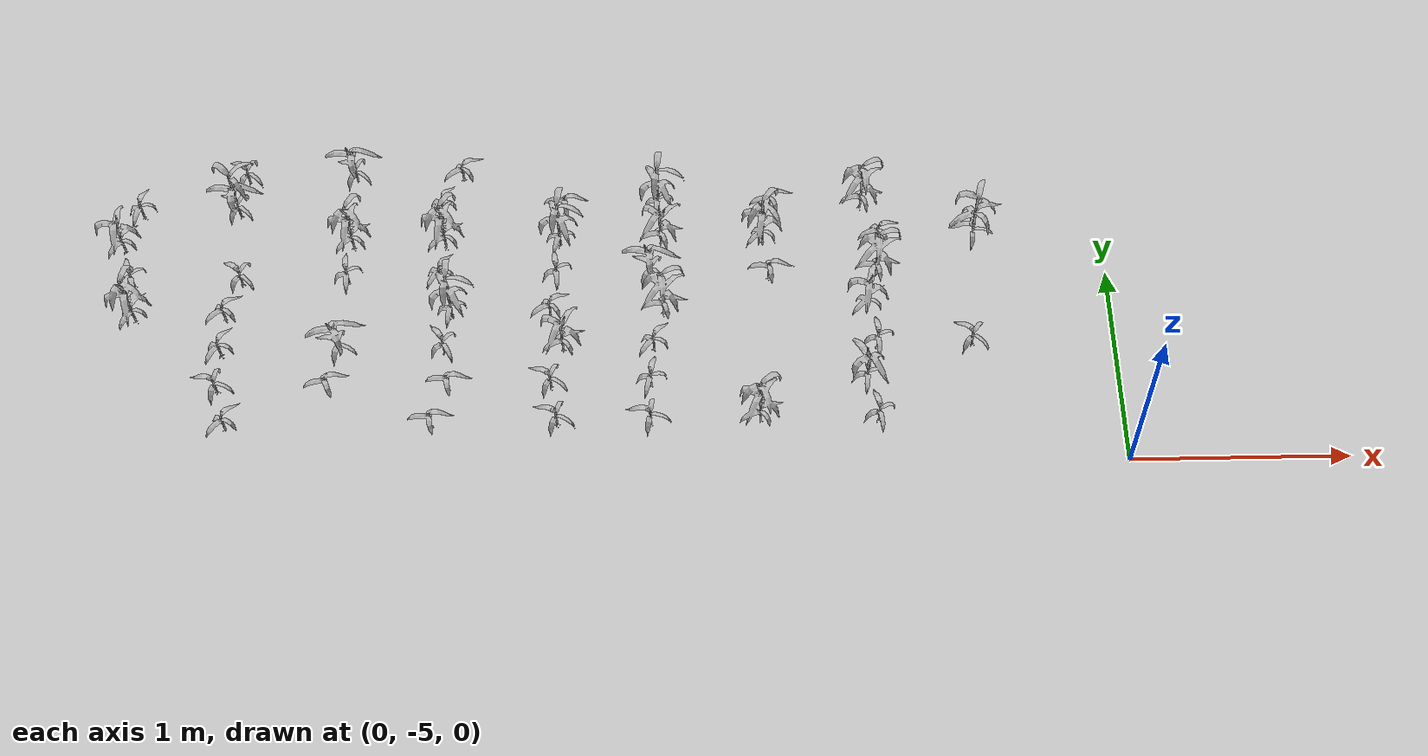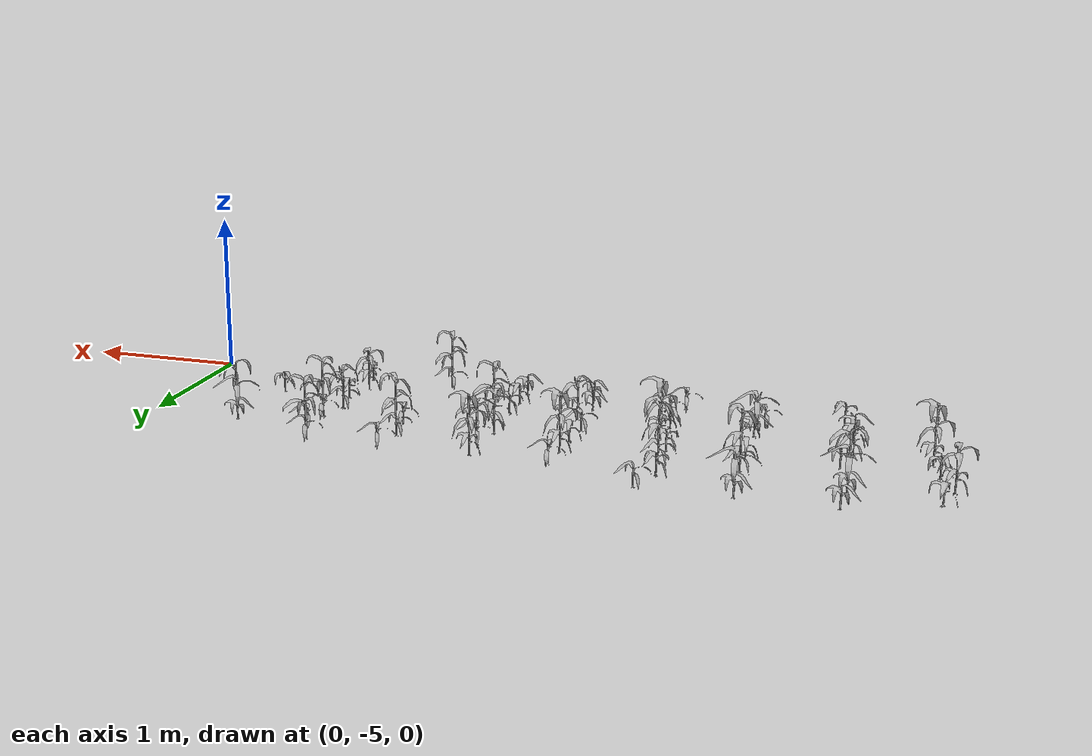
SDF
<sdf version="1.7">
 <world name="default">
  <model name="maize_-4.55020041969208_-4.215">
   <static>1</static>
   <link name="link">
    <inertial>
     <mass>0.2</mass>
     <inertia>
      <ixx>0.166667</ixx>
      <ixy>0</ixy>
      <ixz>0</ixz>
      <iyy>0.166667</iyy>
      <iyz>0</iyz>
      <izz>0.166667</izz>
     </inertia>
    </inertial>
    <collision name="collision">
     <geometry><mesh><uri>model://corn_5/meshes/corn.dae</uri><scale>0.25 0.25 0.25</scale></mesh></geometry>
     <surface>
      <friction><ode><mu>0</mu><mu2>0</mu2></ode></friction>
      <contact><ode><kp>0</kp><kd>0</kd><max_vel>0</max_vel><min_depth>0.002</min_depth></ode></contact>
     </surface>
    </collision>
    <visual name="visual">
     <geometry><mesh><uri>model://corn_5/meshes/corn.dae</uri><scale>0.25 0.25 0.25</scale></mesh></geometry>
    </visual>
    <velocity_decay><linear>0</linear><angular>0</angular></velocity_decay>
   </link>
   <pose>-4.5502 -4.215 0.05 0 -0 1.16205</pose>
  </model>
  <model name="maize_-4.580675109102509_-4.02">
   <static>1</static>
   <link name="link">
    <inertial>
     <mass>0.2</mass>
     <inertia>
      <ixx>0.166667</ixx>
      <ixy>0</ixy>
      <ixz>0</ixz>
      <iyy>0.166667</iyy>
      <iyz>0</iyz>
      <izz>0.166667</izz>
     </inertia>
    </inertial>
    <collision name="collision">
     <geometry><mesh><uri>model://corn_3/meshes/corn.dae</uri><scale>0.25 0.25 0.25</scale></mesh></geometry>
     <surface>
      <friction><ode><mu>0</mu><mu2>0</mu2></ode></friction>
      <contact><ode><kp>0</kp><kd>0</kd><max_vel>0</max_vel><min_depth>0.002</min_depth></ode></contact>
     </surface>
    </collision>
    <visual name="visual">
     <geometry><mesh><uri>model://corn_3/meshes/corn.dae</uri><scale>0.25 0.25 0.25</scale></mesh></geometry>
    </visual>
    <velocity_decay><linear>0</linear><angular>0</angular></velocity_decay>
   </link>
   <pose>-4.58068 -4.02 0.05 0 -0 1.94145</pose>
  </model>
  <model name="maize_-4.645680621180366_-3.8249999999999997">
   <static>1</static>
   <link name="link">
    <inertial>
     <mass>0.2</mass>
     <inertia>
      <ixx>0.166667</ixx>
      <ixy>0</ixy>
      <ixz>0</ixz>
      <iyy>0.166667</iyy>
      <iyz>0</iyz>
      <izz>0.166667</izz>
     </inertia>
    </inertial>
    <collision name="collision">
     <geometry><mesh><uri>model://corn_4/meshes/corn.dae</uri><scale>0.25 0.25 0.25</scale></mesh></geometry>
     <surface>
      <friction><ode><mu>0</mu><mu2>0</mu2></ode></friction>
      <contact><ode><kp>0</kp><kd>0</kd><max_vel>0</max_vel><min_depth>0.002</min_depth></ode></contact>
     </surface>
    </collision>
    <visual name="visual">
     <geometry><mesh><uri>model://corn_4/meshes/corn.dae</uri><scale>0.25 0.25 0.25</scale></mesh></geometry>
    </visual>
    <velocity_decay><linear>0</linear><angular>0</angular></velocity_decay>
   </link>
   <pose>-4.64568 -3.825 0.05 0 -0 1.04335</pose>
  </model>
  <model name="maize_-4.582487427102618_-3.63">
   <static>1</static>
   <link name="link">
    <inertial>
     <mass>0.2</mass>
     <inertia>
      <ixx>0.166667</ixx>
      <ixy>0</ixy>
      <ixz>0</ixz>
      <iyy>0.166667</iyy>
      <iyz>0</iyz>
      <izz>0.166667</izz>
     </inertia>
    </inertial>
    <collision name="collision">
     <geometry><mesh><uri>model://corn_3/meshes/corn.dae</uri><scale>0.25 0.25 0.25</scale></mesh></geometry>
     <surface>
      <friction><ode><mu>0</mu><mu2>0</mu2></ode></friction>
      <contact><ode><kp>0</kp><kd>0</kd><max_vel>0</max_vel><min_depth>0.002</min_depth></ode></contact>
     </surface>
    </collision>
    <visual name="visual">
     <geometry><mesh><uri>model://corn_3/meshes/corn.dae</uri><scale>0.25 0.25 0.25</scale></mesh></geometry>
    </visual>
    <velocity_decay><linear>0</linear><angular>0</angular></velocity_decay>
   </link>
   <pose>-4.58249 -3.63 0.05 0 -0 1.40864</pose>
  </model>
  <model name="maize_-4.072910455751138_-4.8">
   <static>1</static>
   <link name="link">
    <inertial>
     <mass>0.2</mass>
     <inertia>
      <ixx>0.166667</ixx>
      <ixy>0</ixy>
      <ixz>0</ixz>
      <iyy>0.166667</iyy>
      <iyz>0</iyz>
      <izz>0.166667</izz>
     </inertia>
    </inertial>
    <collision name="collision">
     <geometry><mesh><uri>model://corn_3/meshes/corn.dae</uri><scale>0.25 0.25 0.25</scale></mesh></geometry>
     <surface>
      <friction><ode><mu>0</mu><mu2>0</mu2></ode></friction>
      <contact><ode><kp>0</kp><kd>0</kd><max_vel>0</max_vel><min_depth>0.002</min_depth></ode></contact>
     </surface>
    </collision>
    <visual name="visual">
     <geometry><mesh><uri>model://corn_3/meshes/corn.dae</uri><scale>0.25 0.25 0.25</scale></mesh></geometry>
    </visual>
    <velocity_decay><linear>0</linear><angular>0</angular></velocity_decay>
   </link>
   <pose>-4.07291 -4.8 0.05 0 -0 0.951553</pose>
  </model>
  <model name="maize_-4.130385531157857_-4.6049999999999995">
   <static>1</static>
   <link name="link">
    <inertial>
     <mass>0.2</mass>
     <inertia>
      <ixx>0.166667</ixx>
      <ixy>0</ixy>
      <ixz>0</ixz>
      <iyy>0.166667</iyy>
      <iyz>0</iyz>
      <izz>0.166667</izz>
     </inertia>
    </inertial>
    <collision name="collision">
     <geometry><mesh><uri>model://corn_3/meshes/corn.dae</uri><scale>0.25 0.25 0.25</scale></mesh></geometry>
     <surface>
      <friction><ode><mu>0</mu><mu2>0</mu2></ode></friction>
      <contact><ode><kp>0</kp><kd>0</kd><max_vel>0</max_vel><min_depth>0.002</min_depth></ode></contact>
     </surface>
    </collision>
    <visual name="visual">
     <geometry><mesh><uri>model://corn_3/meshes/corn.dae</uri><scale>0.25 0.25 0.25</scale></mesh></geometry>
    </visual>
    <velocity_decay><linear>0</linear><angular>0</angular></velocity_decay>
   </link>
   <pose>-4.13039 -4.605 0.05 0 -0 2.84268</pose>
  </model>
  <model name="maize_-4.131875597311677_-4.41">
   <static>1</static>
   <link name="link">
    <inertial>
     <mass>0.2</mass>
     <inertia>
      <ixx>0.166667</ixx>
      <ixy>0</ixy>
      <ixz>0</ixz>
      <iyy>0.166667</iyy>
      <iyz>0</iyz>
      <izz>0.166667</izz>
     </inertia>
    </inertial>
    <collision name="collision">
     <geometry><mesh><uri>model://corn_3/meshes/corn.dae</uri><scale>0.25 0.25 0.25</scale></mesh></geometry>
     <surface>
      <friction><ode><mu>0</mu><mu2>0</mu2></ode></friction>
      <contact><ode><kp>0</kp><kd>0</kd><max_vel>0</max_vel><min_depth>0.002</min_depth></ode></contact>
     </surface>
    </collision>
    <visual name="visual">
     <geometry><mesh><uri>model://corn_3/meshes/corn.dae</uri><scale>0.25 0.25 0.25</scale></mesh></geometry>
    </visual>
    <velocity_decay><linear>0</linear><angular>0</angular></velocity_decay>
   </link>
   <pose>-4.13188 -4.41 0.05 0 -0 1.13043</pose>
  </model>
  <model name="maize_-4.132233516631445_-4.215">
   <static>1</static>
   <link name="link">
    <inertial>
     <mass>0.2</mass>
     <inertia>
      <ixx>0.166667</ixx>
      <ixy>0</ixy>
      <ixz>0</ixz>
      <iyy>0.166667</iyy>
      <iyz>0</iyz>
      <izz>0.166667</izz>
     </inertia>
    </inertial>
    <collision name="collision">
     <geometry><mesh><uri>model://corn_3/meshes/corn.dae</uri><scale>0.25 0.25 0.25</scale></mesh></geometry>
     <surface>
      <friction><ode><mu>0</mu><mu2>0</mu2></ode></friction>
      <contact><ode><kp>0</kp><kd>0</kd><max_vel>0</max_vel><min_depth>0.002</min_depth></ode></contact>
     </surface>
    </collision>
    <visual name="visual">
     <geometry><mesh><uri>model://corn_3/meshes/corn.dae</uri><scale>0.25 0.25 0.25</scale></mesh></geometry>
    </visual>
    <velocity_decay><linear>0</linear><angular>0</angular></velocity_decay>
   </link>
   <pose>-4.13223 -4.215 0.05 0 -0 0.802496</pose>
  </model>
  <model name="maize_-4.07256420494649_-4.02">
   <static>1</static>
   <link name="link">
    <inertial>
     <mass>0.2</mass>
     <inertia>
      <ixx>0.166667</ixx>
      <ixy>0</ixy>
      <ixz>0</ixz>
      <iyy>0.166667</iyy>
      <iyz>0</iyz>
      <izz>0.166667</izz>
     </inertia>
    </inertial>
    <collision name="collision">
     <geometry><mesh><uri>model://corn_3/meshes/corn.dae</uri><scale>0.25 0.25 0.25</scale></mesh></geometry>
     <surface>
      <friction><ode><mu>0</mu><mu2>0</mu2></ode></friction>
      <contact><ode><kp>0</kp><kd>0</kd><max_vel>0</max_vel><min_depth>0.002</min_depth></ode></contact>
     </surface>
    </collision>
    <visual name="visual">
     <geometry><mesh><uri>model://corn_3/meshes/corn.dae</uri><scale>0.25 0.25 0.25</scale></mesh></geometry>
    </visual>
    <velocity_decay><linear>0</linear><angular>0</angular></velocity_decay>
   </link>
   <pose>-4.07256 -4.02 0.05 0 -0 2.45634</pose>
  </model>
  <model name="maize_-4.119878322291466_-3.63">
   <static>1</static>
   <link name="link">
    <inertial>
     <mass>0.2</mass>
     <inertia>
      <ixx>0.166667</ixx>
      <ixy>0</ixy>
      <ixz>0</ixz>
      <iyy>0.166667</iyy>
      <iyz>0</iyz>
      <izz>0.166667</izz>
     </inertia>
    </inertial>
    <collision name="collision">
     <geometry><mesh><uri>model://corn_5/meshes/corn.dae</uri><scale>0.25 0.25 0.25</scale></mesh></geometry>
     <surface>
      <friction><ode><mu>0</mu><mu2>0</mu2></ode></friction>
      <contact><ode><kp>0</kp><kd>0</kd><max_vel>0</max_vel><min_depth>0.002</min_depth></ode></contact>
     </surface>
    </collision>
    <visual name="visual">
     <geometry><mesh><uri>model://corn_5/meshes/corn.dae</uri><scale>0.25 0.25 0.25</scale></mesh></geometry>
    </visual>
    <velocity_decay><linear>0</linear><angular>0</angular></velocity_decay>
   </link>
   <pose>-4.11988 -3.63 0.05 0 -0 2.50887</pose>
  </model>
  <model name="maize_-4.094449182525982_-3.4349999999999996">
   <static>1</static>
   <link name="link">
    <inertial>
     <mass>0.2</mass>
     <inertia>
      <ixx>0.166667</ixx>
      <ixy>0</ixy>
      <ixz>0</ixz>
      <iyy>0.166667</iyy>
      <iyz>0</iyz>
      <izz>0.166667</izz>
     </inertia>
    </inertial>
    <collision name="collision">
     <geometry><mesh><uri>model://corn_3/meshes/corn.dae</uri><scale>0.25 0.25 0.25</scale></mesh></geometry>
     <surface>
      <friction><ode><mu>0</mu><mu2>0</mu2></ode></friction>
      <contact><ode><kp>0</kp><kd>0</kd><max_vel>0</max_vel><min_depth>0.002</min_depth></ode></contact>
     </surface>
    </collision>
    <visual name="visual">
     <geometry><mesh><uri>model://corn_3/meshes/corn.dae</uri><scale>0.25 0.25 0.25</scale></mesh></geometry>
    </visual>
    <velocity_decay><linear>0</linear><angular>0</angular></velocity_decay>
   </link>
   <pose>-4.09445 -3.435 0.05 0 -0 2.54974</pose>
  </model>
  <model name="maize_-3.6297812100677382_-4.6049999999999995">
   <static>1</static>
   <link name="link">
    <inertial>
     <mass>0.2</mass>
     <inertia>
      <ixx>0.166667</ixx>
      <ixy>0</ixy>
      <ixz>0</ixz>
      <iyy>0.166667</iyy>
      <iyz>0</iyz>
      <izz>0.166667</izz>
     </inertia>
    </inertial>
    <collision name="collision">
     <geometry><mesh><uri>model://corn_3/meshes/corn.dae</uri><scale>0.25 0.25 0.25</scale></mesh></geometry>
     <surface>
      <friction><ode><mu>0</mu><mu2>0</mu2></ode></friction>
      <contact><ode><kp>0</kp><kd>0</kd><max_vel>0</max_vel><min_depth>0.002</min_depth></ode></contact>
     </surface>
    </collision>
    <visual name="visual">
     <geometry><mesh><uri>model://corn_3/meshes/corn.dae</uri><scale>0.25 0.25 0.25</scale></mesh></geometry>
    </visual>
    <velocity_decay><linear>0</linear><angular>0</angular></velocity_decay>
   </link>
   <pose>-3.62978 -4.605 0.05 0 -0 0.300526</pose>
  </model>
  <model name="maize_-3.584384853009362_-4.41">
   <static>1</static>
   <link name="link">
    <inertial>
     <mass>0.2</mass>
     <inertia>
      <ixx>0.166667</ixx>
      <ixy>0</ixy>
      <ixz>0</ixz>
      <iyy>0.166667</iyy>
      <iyz>0</iyz>
      <izz>0.166667</izz>
     </inertia>
    </inertial>
    <collision name="collision">
     <geometry><mesh><uri>model://corn_4/meshes/corn.dae</uri><scale>0.25 0.25 0.25</scale></mesh></geometry>
     <surface>
      <friction><ode><mu>0</mu><mu2>0</mu2></ode></friction>
      <contact><ode><kp>0</kp><kd>0</kd><max_vel>0</max_vel><min_depth>0.002</min_depth></ode></contact>
     </surface>
    </collision>
    <visual name="visual">
     <geometry><mesh><uri>model://corn_4/meshes/corn.dae</uri><scale>0.25 0.25 0.25</scale></mesh></geometry>
    </visual>
    <velocity_decay><linear>0</linear><angular>0</angular></velocity_decay>
   </link>
   <pose>-3.58439 -4.41 0.05 0 -0 2.79125</pose>
  </model>
  <model name="maize_-3.5737838980341237_-4.02">
   <static>1</static>
   <link name="link">
    <inertial>
     <mass>0.2</mass>
     <inertia>
      <ixx>0.166667</ixx>
      <ixy>0</ixy>
      <ixz>0</ixz>
      <iyy>0.166667</iyy>
      <iyz>0</iyz>
      <izz>0.166667</izz>
     </inertia>
    </inertial>
    <collision name="collision">
     <geometry><mesh><uri>model://corn_3/meshes/corn.dae</uri><scale>0.25 0.25 0.25</scale></mesh></geometry>
     <surface>
      <friction><ode><mu>0</mu><mu2>0</mu2></ode></friction>
      <contact><ode><kp>0</kp><kd>0</kd><max_vel>0</max_vel><min_depth>0.002</min_depth></ode></contact>
     </surface>
    </collision>
    <visual name="visual">
     <geometry><mesh><uri>model://corn_3/meshes/corn.dae</uri><scale>0.25 0.25 0.25</scale></mesh></geometry>
    </visual>
    <velocity_decay><linear>0</linear><angular>0</angular></velocity_decay>
   </link>
   <pose>-3.57378 -4.02 0.05 0 -0 1.70556</pose>
  </model>
  <model name="maize_-3.5636541984093753_-3.8249999999999997">
   <static>1</static>
   <link name="link">
    <inertial>
     <mass>0.2</mass>
     <inertia>
      <ixx>0.166667</ixx>
      <ixy>0</ixy>
      <ixz>0</ixz>
      <iyy>0.166667</iyy>
      <iyz>0</iyz>
      <izz>0.166667</izz>
     </inertia>
    </inertial>
    <collision name="collision">
     <geometry><mesh><uri>model://corn_5/meshes/corn.dae</uri><scale>0.25 0.25 0.25</scale></mesh></geometry>
     <surface>
      <friction><ode><mu>0</mu><mu2>0</mu2></ode></friction>
      <contact><ode><kp>0</kp><kd>0</kd><max_vel>0</max_vel><min_depth>0.002</min_depth></ode></contact>
     </surface>
    </collision>
    <visual name="visual">
     <geometry><mesh><uri>model://corn_5/meshes/corn.dae</uri><scale>0.25 0.25 0.25</scale></mesh></geometry>
    </visual>
    <velocity_decay><linear>0</linear><angular>0</angular></velocity_decay>
   </link>
   <pose>-3.56365 -3.825 0.05 0 -0 0.87235</pose>
  </model>
  <model name="maize_-3.573708741134676_-3.4349999999999996">
   <static>1</static>
   <link name="link">
    <inertial>
     <mass>0.2</mass>
     <inertia>
      <ixx>0.166667</ixx>
      <ixy>0</ixy>
      <ixz>0</ixz>
      <iyy>0.166667</iyy>
      <iyz>0</iyz>
      <izz>0.166667</izz>
     </inertia>
    </inertial>
    <collision name="collision">
     <geometry><mesh><uri>model://corn_4/meshes/corn.dae</uri><scale>0.25 0.25 0.25</scale></mesh></geometry>
     <surface>
      <friction><ode><mu>0</mu><mu2>0</mu2></ode></friction>
      <contact><ode><kp>0</kp><kd>0</kd><max_vel>0</max_vel><min_depth>0.002</min_depth></ode></contact>
     </surface>
    </collision>
    <visual name="visual">
     <geometry><mesh><uri>model://corn_4/meshes/corn.dae</uri><scale>0.25 0.25 0.25</scale></mesh></geometry>
    </visual>
    <velocity_decay><linear>0</linear><angular>0</angular></velocity_decay>
   </link>
   <pose>-3.57371 -3.435 0.05 0 -0 2.55552</pose>
  </model>
  <model name="maize_-3.1463088229634315_-4.8">
   <static>1</static>
   <link name="link">
    <inertial>
     <mass>0.2</mass>
     <inertia>
      <ixx>0.166667</ixx>
      <ixy>0</ixy>
      <ixz>0</ixz>
      <iyy>0.166667</iyy>
      <iyz>0</iyz>
      <izz>0.166667</izz>
     </inertia>
    </inertial>
    <collision name="collision">
     <geometry><mesh><uri>model://corn_3/meshes/corn.dae</uri><scale>0.25 0.25 0.25</scale></mesh></geometry>
     <surface>
      <friction><ode><mu>0</mu><mu2>0</mu2></ode></friction>
      <contact><ode><kp>0</kp><kd>0</kd><max_vel>0</max_vel><min_depth>0.002</min_depth></ode></contact>
     </surface>
    </collision>
    <visual name="visual">
     <geometry><mesh><uri>model://corn_3/meshes/corn.dae</uri><scale>0.25 0.25 0.25</scale></mesh></geometry>
    </visual>
    <velocity_decay><linear>0</linear><angular>0</angular></velocity_decay>
   </link>
   <pose>-3.14631 -4.8 0.05 0 -0 0.100291</pose>
  </model>
  <model name="maize_-3.077418617200121_-4.6049999999999995">
   <static>1</static>
   <link name="link">
    <inertial>
     <mass>0.2</mass>
     <inertia>
      <ixx>0.166667</ixx>
      <ixy>0</ixy>
      <ixz>0</ixz>
      <iyy>0.166667</iyy>
      <iyz>0</iyz>
      <izz>0.166667</izz>
     </inertia>
    </inertial>
    <collision name="collision">
     <geometry><mesh><uri>model://corn_3/meshes/corn.dae</uri><scale>0.25 0.25 0.25</scale></mesh></geometry>
     <surface>
      <friction><ode><mu>0</mu><mu2>0</mu2></ode></friction>
      <contact><ode><kp>0</kp><kd>0</kd><max_vel>0</max_vel><min_depth>0.002</min_depth></ode></contact>
     </surface>
    </collision>
    <visual name="visual">
     <geometry><mesh><uri>model://corn_3/meshes/corn.dae</uri><scale>0.25 0.25 0.25</scale></mesh></geometry>
    </visual>
    <velocity_decay><linear>0</linear><angular>0</angular></velocity_decay>
   </link>
   <pose>-3.07742 -4.605 0.05 0 -0 0.0925</pose>
  </model>
  <model name="maize_-3.105491710389235_-4.41">
   <static>1</static>
   <link name="link">
    <inertial>
     <mass>0.2</mass>
     <inertia>
      <ixx>0.166667</ixx>
      <ixy>0</ixy>
      <ixz>0</ixz>
      <iyy>0.166667</iyy>
      <iyz>0</iyz>
      <izz>0.166667</izz>
     </inertia>
    </inertial>
    <collision name="collision">
     <geometry><mesh><uri>model://corn_3/meshes/corn.dae</uri><scale>0.25 0.25 0.25</scale></mesh></geometry>
     <surface>
      <friction><ode><mu>0</mu><mu2>0</mu2></ode></friction>
      <contact><ode><kp>0</kp><kd>0</kd><max_vel>0</max_vel><min_depth>0.002</min_depth></ode></contact>
     </surface>
    </collision>
    <visual name="visual">
     <geometry><mesh><uri>model://corn_3/meshes/corn.dae</uri><scale>0.25 0.25 0.25</scale></mesh></geometry>
    </visual>
    <velocity_decay><linear>0</linear><angular>0</angular></velocity_decay>
   </link>
   <pose>-3.10549 -4.41 0.05 0 -0 2.15809</pose>
  </model>
  <model name="maize_-3.078760328477211_-4.215">
   <static>1</static>
   <link name="link">
    <inertial>
     <mass>0.2</mass>
     <inertia>
      <ixx>0.166667</ixx>
      <ixy>0</ixy>
      <ixz>0</ixz>
      <iyy>0.166667</iyy>
      <iyz>0</iyz>
      <izz>0.166667</izz>
     </inertia>
    </inertial>
    <collision name="collision">
     <geometry><mesh><uri>model://corn_5/meshes/corn.dae</uri><scale>0.25 0.25 0.25</scale></mesh></geometry>
     <surface>
      <friction><ode><mu>0</mu><mu2>0</mu2></ode></friction>
      <contact><ode><kp>0</kp><kd>0</kd><max_vel>0</max_vel><min_depth>0.002</min_depth></ode></contact>
     </surface>
    </collision>
    <visual name="visual">
     <geometry><mesh><uri>model://corn_5/meshes/corn.dae</uri><scale>0.25 0.25 0.25</scale></mesh></geometry>
    </visual>
    <velocity_decay><linear>0</linear><angular>0</angular></velocity_decay>
   </link>
   <pose>-3.07876 -4.215 0.05 0 -0 1.53927</pose>
  </model>
  <model name="maize_-3.1409384947310173_-4.02">
   <static>1</static>
   <link name="link">
    <inertial>
     <mass>0.2</mass>
     <inertia>
      <ixx>0.166667</ixx>
      <ixy>0</ixy>
      <ixz>0</ixz>
      <iyy>0.166667</iyy>
      <iyz>0</iyz>
      <izz>0.166667</izz>
     </inertia>
    </inertial>
    <collision name="collision">
     <geometry><mesh><uri>model://corn_3/meshes/corn.dae</uri><scale>0.25 0.25 0.25</scale></mesh></geometry>
     <surface>
      <friction><ode><mu>0</mu><mu2>0</mu2></ode></friction>
      <contact><ode><kp>0</kp><kd>0</kd><max_vel>0</max_vel><min_depth>0.002</min_depth></ode></contact>
     </surface>
    </collision>
    <visual name="visual">
     <geometry><mesh><uri>model://corn_3/meshes/corn.dae</uri><scale>0.25 0.25 0.25</scale></mesh></geometry>
    </visual>
    <velocity_decay><linear>0</linear><angular>0</angular></velocity_decay>
   </link>
   <pose>-3.14094 -4.02 0.05 0 -0 1.09304</pose>
  </model>
  <model name="maize_-3.1273716849690927_-3.8249999999999997">
   <static>1</static>
   <link name="link">
    <inertial>
     <mass>0.2</mass>
     <inertia>
      <ixx>0.166667</ixx>
      <ixy>0</ixy>
      <ixz>0</ixz>
      <iyy>0.166667</iyy>
      <iyz>0</iyz>
      <izz>0.166667</izz>
     </inertia>
    </inertial>
    <collision name="collision">
     <geometry><mesh><uri>model://corn_5/meshes/corn.dae</uri><scale>0.25 0.25 0.25</scale></mesh></geometry>
     <surface>
      <friction><ode><mu>0</mu><mu2>0</mu2></ode></friction>
      <contact><ode><kp>0</kp><kd>0</kd><max_vel>0</max_vel><min_depth>0.002</min_depth></ode></contact>
     </surface>
    </collision>
    <visual name="visual">
     <geometry><mesh><uri>model://corn_5/meshes/corn.dae</uri><scale>0.25 0.25 0.25</scale></mesh></geometry>
    </visual>
    <velocity_decay><linear>0</linear><angular>0</angular></velocity_decay>
   </link>
   <pose>-3.12737 -3.825 0.05 0 -0 0.825588</pose>
  </model>
  <model name="maize_-3.1482686533407325_-3.63">
   <static>1</static>
   <link name="link">
    <inertial>
     <mass>0.2</mass>
     <inertia>
      <ixx>0.166667</ixx>
      <ixy>0</ixy>
      <ixz>0</ixz>
      <iyy>0.166667</iyy>
      <iyz>0</iyz>
      <izz>0.166667</izz>
     </inertia>
    </inertial>
    <collision name="collision">
     <geometry><mesh><uri>model://corn_3/meshes/corn.dae</uri><scale>0.25 0.25 0.25</scale></mesh></geometry>
     <surface>
      <friction><ode><mu>0</mu><mu2>0</mu2></ode></friction>
      <contact><ode><kp>0</kp><kd>0</kd><max_vel>0</max_vel><min_depth>0.002</min_depth></ode></contact>
     </surface>
    </collision>
    <visual name="visual">
     <geometry><mesh><uri>model://corn_3/meshes/corn.dae</uri><scale>0.25 0.25 0.25</scale></mesh></geometry>
    </visual>
    <velocity_decay><linear>0</linear><angular>0</angular></velocity_decay>
   </link>
   <pose>-3.14827 -3.63 0.05 0 -0 1.09496</pose>
  </model>
  <model name="maize_-3.0606493064853364_-3.4349999999999996">
   <static>1</static>
   <link name="link">
    <inertial>
     <mass>0.2</mass>
     <inertia>
      <ixx>0.166667</ixx>
      <ixy>0</ixy>
      <ixz>0</ixz>
      <iyy>0.166667</iyy>
      <iyz>0</iyz>
      <izz>0.166667</izz>
     </inertia>
    </inertial>
    <collision name="collision">
     <geometry><mesh><uri>model://corn_3/meshes/corn.dae</uri><scale>0.25 0.25 0.25</scale></mesh></geometry>
     <surface>
      <friction><ode><mu>0</mu><mu2>0</mu2></ode></friction>
      <contact><ode><kp>0</kp><kd>0</kd><max_vel>0</max_vel><min_depth>0.002</min_depth></ode></contact>
     </surface>
    </collision>
    <visual name="visual">
     <geometry><mesh><uri>model://corn_3/meshes/corn.dae</uri><scale>0.25 0.25 0.25</scale></mesh></geometry>
    </visual>
    <velocity_decay><linear>0</linear><angular>0</angular></velocity_decay>
   </link>
   <pose>-3.06065 -3.435 0.05 0 -0 0.64573</pose>
  </model>
  <model name="maize_-2.57659611652667_-4.8">
   <static>1</static>
   <link name="link">
    <inertial>
     <mass>0.2</mass>
     <inertia>
      <ixx>0.166667</ixx>
      <ixy>0</ixy>
      <ixz>0</ixz>
      <iyy>0.166667</iyy>
      <iyz>0</iyz>
      <izz>0.166667</izz>
     </inertia>
    </inertial>
    <collision name="collision">
     <geometry><mesh><uri>model://corn_3/meshes/corn.dae</uri><scale>0.25 0.25 0.25</scale></mesh></geometry>
     <surface>
      <friction><ode><mu>0</mu><mu2>0</mu2></ode></friction>
      <contact><ode><kp>0</kp><kd>0</kd><max_vel>0</max_vel><min_depth>0.002</min_depth></ode></contact>
     </surface>
    </collision>
    <visual name="visual">
     <geometry><mesh><uri>model://corn_3/meshes/corn.dae</uri><scale>0.25 0.25 0.25</scale></mesh></geometry>
    </visual>
    <velocity_decay><linear>0</linear><angular>0</angular></velocity_decay>
   </link>
   <pose>-2.5766 -4.8 0.05 0 -0 2.7151</pose>
  </model>
  <model name="maize_-2.6083020680330797_-4.6049999999999995">
   <static>1</static>
   <link name="link">
    <inertial>
     <mass>0.2</mass>
     <inertia>
      <ixx>0.166667</ixx>
      <ixy>0</ixy>
      <ixz>0</ixz>
      <iyy>0.166667</iyy>
      <iyz>0</iyz>
      <izz>0.166667</izz>
     </inertia>
    </inertial>
    <collision name="collision">
     <geometry><mesh><uri>model://corn_3/meshes/corn.dae</uri><scale>0.25 0.25 0.25</scale></mesh></geometry>
     <surface>
      <friction><ode><mu>0</mu><mu2>0</mu2></ode></friction>
      <contact><ode><kp>0</kp><kd>0</kd><max_vel>0</max_vel><min_depth>0.002</min_depth></ode></contact>
     </surface>
    </collision>
    <visual name="visual">
     <geometry><mesh><uri>model://corn_3/meshes/corn.dae</uri><scale>0.25 0.25 0.25</scale></mesh></geometry>
    </visual>
    <velocity_decay><linear>0</linear><angular>0</angular></velocity_decay>
   </link>
   <pose>-2.6083 -4.605 0.05 0 -0 2.62055</pose>
  </model>
  <model name="maize_-2.556973307439694_-4.41">
   <static>1</static>
   <link name="link">
    <inertial>
     <mass>0.2</mass>
     <inertia>
      <ixx>0.166667</ixx>
      <ixy>0</ixy>
      <ixz>0</ixz>
      <iyy>0.166667</iyy>
      <iyz>0</iyz>
      <izz>0.166667</izz>
     </inertia>
    </inertial>
    <collision name="collision">
     <geometry><mesh><uri>model://corn_4/meshes/corn.dae</uri><scale>0.25 0.25 0.25</scale></mesh></geometry>
     <surface>
      <friction><ode><mu>0</mu><mu2>0</mu2></ode></friction>
      <contact><ode><kp>0</kp><kd>0</kd><max_vel>0</max_vel><min_depth>0.002</min_depth></ode></contact>
     </surface>
    </collision>
    <visual name="visual">
     <geometry><mesh><uri>model://corn_4/meshes/corn.dae</uri><scale>0.25 0.25 0.25</scale></mesh></geometry>
    </visual>
    <velocity_decay><linear>0</linear><angular>0</angular></velocity_decay>
   </link>
   <pose>-2.55697 -4.41 0.05 0 -0 0.552772</pose>
  </model>
  <model name="maize_-2.621745000036527_-4.215">
   <static>1</static>
   <link name="link">
    <inertial>
     <mass>0.2</mass>
     <inertia>
      <ixx>0.166667</ixx>
      <ixy>0</ixy>
      <ixz>0</ixz>
      <iyy>0.166667</iyy>
      <iyz>0</iyz>
      <izz>0.166667</izz>
     </inertia>
    </inertial>
    <collision name="collision">
     <geometry><mesh><uri>model://corn_3/meshes/corn.dae</uri><scale>0.25 0.25 0.25</scale></mesh></geometry>
     <surface>
      <friction><ode><mu>0</mu><mu2>0</mu2></ode></friction>
      <contact><ode><kp>0</kp><kd>0</kd><max_vel>0</max_vel><min_depth>0.002</min_depth></ode></contact>
     </surface>
    </collision>
    <visual name="visual">
     <geometry><mesh><uri>model://corn_3/meshes/corn.dae</uri><scale>0.25 0.25 0.25</scale></mesh></geometry>
    </visual>
    <velocity_decay><linear>0</linear><angular>0</angular></velocity_decay>
   </link>
   <pose>-2.62175 -4.215 0.05 0 -0 0.633296</pose>
  </model>
  <model name="maize_-2.5944986733666493_-4.02">
   <static>1</static>
   <link name="link">
    <inertial>
     <mass>0.2</mass>
     <inertia>
      <ixx>0.166667</ixx>
      <ixy>0</ixy>
      <ixz>0</ixz>
      <iyy>0.166667</iyy>
      <iyz>0</iyz>
      <izz>0.166667</izz>
     </inertia>
    </inertial>
    <collision name="collision">
     <geometry><mesh><uri>model://corn_3/meshes/corn.dae</uri><scale>0.25 0.25 0.25</scale></mesh></geometry>
     <surface>
      <friction><ode><mu>0</mu><mu2>0</mu2></ode></friction>
      <contact><ode><kp>0</kp><kd>0</kd><max_vel>0</max_vel><min_depth>0.002</min_depth></ode></contact>
     </surface>
    </collision>
    <visual name="visual">
     <geometry><mesh><uri>model://corn_3/meshes/corn.dae</uri><scale>0.25 0.25 0.25</scale></mesh></geometry>
    </visual>
    <velocity_decay><linear>0</linear><angular>0</angular></velocity_decay>
   </link>
   <pose>-2.5945 -4.02 0.05 0 -0 1.7384</pose>
  </model>
  <model name="maize_-2.583254781222132_-3.8249999999999997">
   <static>1</static>
   <link name="link">
    <inertial>
     <mass>0.2</mass>
     <inertia>
      <ixx>0.166667</ixx>
      <ixy>0</ixy>
      <ixz>0</ixz>
      <iyy>0.166667</iyy>
      <iyz>0</iyz>
      <izz>0.166667</izz>
     </inertia>
    </inertial>
    <collision name="collision">
     <geometry><mesh><uri>model://corn_5/meshes/corn.dae</uri><scale>0.25 0.25 0.25</scale></mesh></geometry>
     <surface>
      <friction><ode><mu>0</mu><mu2>0</mu2></ode></friction>
      <contact><ode><kp>0</kp><kd>0</kd><max_vel>0</max_vel><min_depth>0.002</min_depth></ode></contact>
     </surface>
    </collision>
    <visual name="visual">
     <geometry><mesh><uri>model://corn_5/meshes/corn.dae</uri><scale>0.25 0.25 0.25</scale></mesh></geometry>
    </visual>
    <velocity_decay><linear>0</linear><angular>0</angular></velocity_decay>
   </link>
   <pose>-2.58325 -3.825 0.05 0 -0 1.40187</pose>
  </model>
  <model name="maize_-2.5640142068610374_-3.63">
   <static>1</static>
   <link name="link">
    <inertial>
     <mass>0.2</mass>
     <inertia>
      <ixx>0.166667</ixx>
      <ixy>0</ixy>
      <ixz>0</ixz>
      <iyy>0.166667</iyy>
      <iyz>0</iyz>
      <izz>0.166667</izz>
     </inertia>
    </inertial>
    <collision name="collision">
     <geometry><mesh><uri>model://corn_3/meshes/corn.dae</uri><scale>0.25 0.25 0.25</scale></mesh></geometry>
     <surface>
      <friction><ode><mu>0</mu><mu2>0</mu2></ode></friction>
      <contact><ode><kp>0</kp><kd>0</kd><max_vel>0</max_vel><min_depth>0.002</min_depth></ode></contact>
     </surface>
    </collision>
    <visual name="visual">
     <geometry><mesh><uri>model://corn_3/meshes/corn.dae</uri><scale>0.25 0.25 0.25</scale></mesh></geometry>
    </visual>
    <velocity_decay><linear>0</linear><angular>0</angular></velocity_decay>
   </link>
   <pose>-2.56401 -3.63 0.05 0 -0 0.073179</pose>
  </model>
  <model name="maize_-2.153084948587333_-4.8">
   <static>1</static>
   <link name="link">
    <inertial>
     <mass>0.2</mass>
     <inertia>
      <ixx>0.166667</ixx>
      <ixy>0</ixy>
      <ixz>0</ixz>
      <iyy>0.166667</iyy>
      <iyz>0</iyz>
      <izz>0.166667</izz>
     </inertia>
    </inertial>
    <collision name="collision">
     <geometry><mesh><uri>model://corn_3/meshes/corn.dae</uri><scale>0.25 0.25 0.25</scale></mesh></geometry>
     <surface>
      <friction><ode><mu>0</mu><mu2>0</mu2></ode></friction>
      <contact><ode><kp>0</kp><kd>0</kd><max_vel>0</max_vel><min_depth>0.002</min_depth></ode></contact>
     </surface>
    </collision>
    <visual name="visual">
     <geometry><mesh><uri>model://corn_3/meshes/corn.dae</uri><scale>0.25 0.25 0.25</scale></mesh></geometry>
    </visual>
    <velocity_decay><linear>0</linear><angular>0</angular></velocity_decay>
   </link>
   <pose>-2.15308 -4.8 0.05 0 -0 2.93239</pose>
  </model>
  <model name="maize_-2.151343220393546_-4.6049999999999995">
   <static>1</static>
   <link name="link">
    <inertial>
     <mass>0.2</mass>
     <inertia>
      <ixx>0.166667</ixx>
      <ixy>0</ixy>
      <ixz>0</ixz>
      <iyy>0.166667</iyy>
      <iyz>0</iyz>
      <izz>0.166667</izz>
     </inertia>
    </inertial>
    <collision name="collision">
     <geometry><mesh><uri>model://corn_3/meshes/corn.dae</uri><scale>0.25 0.25 0.25</scale></mesh></geometry>
     <surface>
      <friction><ode><mu>0</mu><mu2>0</mu2></ode></friction>
      <contact><ode><kp>0</kp><kd>0</kd><max_vel>0</max_vel><min_depth>0.002</min_depth></ode></contact>
     </surface>
    </collision>
    <visual name="visual">
     <geometry><mesh><uri>model://corn_3/meshes/corn.dae</uri><scale>0.25 0.25 0.25</scale></mesh></geometry>
    </visual>
    <velocity_decay><linear>0</linear><angular>0</angular></velocity_decay>
   </link>
   <pose>-2.15134 -4.605 0.05 0 -0 1.42819</pose>
  </model>
  <model name="maize_-2.1391636103044473_-4.41">
   <static>1</static>
   <link name="link">
    <inertial>
     <mass>0.2</mass>
     <inertia>
      <ixx>0.166667</ixx>
      <ixy>0</ixy>
      <ixz>0</ixz>
      <iyy>0.166667</iyy>
      <iyz>0</iyz>
      <izz>0.166667</izz>
     </inertia>
    </inertial>
    <collision name="collision">
     <geometry><mesh><uri>model://corn_3/meshes/corn.dae</uri><scale>0.25 0.25 0.25</scale></mesh></geometry>
     <surface>
      <friction><ode><mu>0</mu><mu2>0</mu2></ode></friction>
      <contact><ode><kp>0</kp><kd>0</kd><max_vel>0</max_vel><min_depth>0.002</min_depth></ode></contact>
     </surface>
    </collision>
    <visual name="visual">
     <geometry><mesh><uri>model://corn_3/meshes/corn.dae</uri><scale>0.25 0.25 0.25</scale></mesh></geometry>
    </visual>
    <velocity_decay><linear>0</linear><angular>0</angular></velocity_decay>
   </link>
   <pose>-2.13916 -4.41 0.05 0 -0 0.976514</pose>
  </model>
  <model name="maize_-2.094916044615167_-4.215">
   <static>1</static>
   <link name="link">
    <inertial>
     <mass>0.2</mass>
     <inertia>
      <ixx>0.166667</ixx>
      <ixy>0</ixy>
      <ixz>0</ixz>
      <iyy>0.166667</iyy>
      <iyz>0</iyz>
      <izz>0.166667</izz>
     </inertia>
    </inertial>
    <collision name="collision">
     <geometry><mesh><uri>model://corn_5/meshes/corn.dae</uri><scale>0.25 0.25 0.25</scale></mesh></geometry>
     <surface>
      <friction><ode><mu>0</mu><mu2>0</mu2></ode></friction>
      <contact><ode><kp>0</kp><kd>0</kd><max_vel>0</max_vel><min_depth>0.002</min_depth></ode></contact>
     </surface>
    </collision>
    <visual name="visual">
     <geometry><mesh><uri>model://corn_5/meshes/corn.dae</uri><scale>0.25 0.25 0.25</scale></mesh></geometry>
    </visual>
    <velocity_decay><linear>0</linear><angular>0</angular></velocity_decay>
   </link>
   <pose>-2.09492 -4.215 0.05 0 -0 0.237615</pose>
  </model>
  <model name="maize_-2.1520786940585857_-4.02">
   <static>1</static>
   <link name="link">
    <inertial>
     <mass>0.2</mass>
     <inertia>
      <ixx>0.166667</ixx>
      <ixy>0</ixy>
      <ixz>0</ixz>
      <iyy>0.166667</iyy>
      <iyz>0</iyz>
      <izz>0.166667</izz>
     </inertia>
    </inertial>
    <collision name="collision">
     <geometry><mesh><uri>model://corn_4/meshes/corn.dae</uri><scale>0.25 0.25 0.25</scale></mesh></geometry>
     <surface>
      <friction><ode><mu>0</mu><mu2>0</mu2></ode></friction>
      <contact><ode><kp>0</kp><kd>0</kd><max_vel>0</max_vel><min_depth>0.002</min_depth></ode></contact>
     </surface>
    </collision>
    <visual name="visual">
     <geometry><mesh><uri>model://corn_4/meshes/corn.dae</uri><scale>0.25 0.25 0.25</scale></mesh></geometry>
    </visual>
    <velocity_decay><linear>0</linear><angular>0</angular></velocity_decay>
   </link>
   <pose>-2.15208 -4.02 0.05 0 -0 2.44863</pose>
  </model>
  <model name="maize_-2.1074836934854866_-3.8249999999999997">
   <static>1</static>
   <link name="link">
    <inertial>
     <mass>0.2</mass>
     <inertia>
      <ixx>0.166667</ixx>
      <ixy>0</ixy>
      <ixz>0</ixz>
      <iyy>0.166667</iyy>
      <iyz>0</iyz>
      <izz>0.166667</izz>
     </inertia>
    </inertial>
    <collision name="collision">
     <geometry><mesh><uri>model://corn_4/meshes/corn.dae</uri><scale>0.25 0.25 0.25</scale></mesh></geometry>
     <surface>
      <friction><ode><mu>0</mu><mu2>0</mu2></ode></friction>
      <contact><ode><kp>0</kp><kd>0</kd><max_vel>0</max_vel><min_depth>0.002</min_depth></ode></contact>
     </surface>
    </collision>
    <visual name="visual">
     <geometry><mesh><uri>model://corn_4/meshes/corn.dae</uri><scale>0.25 0.25 0.25</scale></mesh></geometry>
    </visual>
    <velocity_decay><linear>0</linear><angular>0</angular></velocity_decay>
   </link>
   <pose>-2.10748 -3.825 0.05 0 -0 0.303834</pose>
  </model>
  <model name="maize_-2.1182992374057052_-3.63">
   <static>1</static>
   <link name="link">
    <inertial>
     <mass>0.2</mass>
     <inertia>
      <ixx>0.166667</ixx>
      <ixy>0</ixy>
      <ixz>0</ixz>
      <iyy>0.166667</iyy>
      <iyz>0</iyz>
      <izz>0.166667</izz>
     </inertia>
    </inertial>
    <collision name="collision">
     <geometry><mesh><uri>model://corn_5/meshes/corn.dae</uri><scale>0.25 0.25 0.25</scale></mesh></geometry>
     <surface>
      <friction><ode><mu>0</mu><mu2>0</mu2></ode></friction>
      <contact><ode><kp>0</kp><kd>0</kd><max_vel>0</max_vel><min_depth>0.002</min_depth></ode></contact>
     </surface>
    </collision>
    <visual name="visual">
     <geometry><mesh><uri>model://corn_5/meshes/corn.dae</uri><scale>0.25 0.25 0.25</scale></mesh></geometry>
    </visual>
    <velocity_decay><linear>0</linear><angular>0</angular></velocity_decay>
   </link>
   <pose>-2.1183 -3.63 0.05 0 -0 1.49093</pose>
  </model>
  <model name="maize_-1.6577234080466767_-4.8">
   <static>1</static>
   <link name="link">
    <inertial>
     <mass>0.2</mass>
     <inertia>
      <ixx>0.166667</ixx>
      <ixy>0</ixy>
      <ixz>0</ixz>
      <iyy>0.166667</iyy>
      <iyz>0</iyz>
      <izz>0.166667</izz>
     </inertia>
    </inertial>
    <collision name="collision">
     <geometry><mesh><uri>model://corn_5/meshes/corn.dae</uri><scale>0.25 0.25 0.25</scale></mesh></geometry>
     <surface>
      <friction><ode><mu>0</mu><mu2>0</mu2></ode></friction>
      <contact><ode><kp>0</kp><kd>0</kd><max_vel>0</max_vel><min_depth>0.002</min_depth></ode></contact>
     </surface>
    </collision>
    <visual name="visual">
     <geometry><mesh><uri>model://corn_5/meshes/corn.dae</uri><scale>0.25 0.25 0.25</scale></mesh></geometry>
    </visual>
    <velocity_decay><linear>0</linear><angular>0</angular></velocity_decay>
   </link>
   <pose>-1.65772 -4.8 0.05 0 -0 0.494922</pose>
  </model>
  <model name="maize_-1.5988878881892021_-4.02">
   <static>1</static>
   <link name="link">
    <inertial>
     <mass>0.2</mass>
     <inertia>
      <ixx>0.166667</ixx>
      <ixy>0</ixy>
      <ixz>0</ixz>
      <iyy>0.166667</iyy>
      <iyz>0</iyz>
      <izz>0.166667</izz>
     </inertia>
    </inertial>
    <collision name="collision">
     <geometry><mesh><uri>model://corn_3/meshes/corn.dae</uri><scale>0.25 0.25 0.25</scale></mesh></geometry>
     <surface>
      <friction><ode><mu>0</mu><mu2>0</mu2></ode></friction>
      <contact><ode><kp>0</kp><kd>0</kd><max_vel>0</max_vel><min_depth>0.002</min_depth></ode></contact>
     </surface>
    </collision>
    <visual name="visual">
     <geometry><mesh><uri>model://corn_3/meshes/corn.dae</uri><scale>0.25 0.25 0.25</scale></mesh></geometry>
    </visual>
    <velocity_decay><linear>0</linear><angular>0</angular></velocity_decay>
   </link>
   <pose>-1.59889 -4.02 0.05 0 -0 0.06256</pose>
  </model>
  <model name="maize_-1.6255186273014317_-3.8249999999999997">
   <static>1</static>
   <link name="link">
    <inertial>
     <mass>0.2</mass>
     <inertia>
      <ixx>0.166667</ixx>
      <ixy>0</ixy>
      <ixz>0</ixz>
      <iyy>0.166667</iyy>
      <iyz>0</iyz>
      <izz>0.166667</izz>
     </inertia>
    </inertial>
    <collision name="collision">
     <geometry><mesh><uri>model://corn_5/meshes/corn.dae</uri><scale>0.25 0.25 0.25</scale></mesh></geometry>
     <surface>
      <friction><ode><mu>0</mu><mu2>0</mu2></ode></friction>
      <contact><ode><kp>0</kp><kd>0</kd><max_vel>0</max_vel><min_depth>0.002</min_depth></ode></contact>
     </surface>
    </collision>
    <visual name="visual">
     <geometry><mesh><uri>model://corn_5/meshes/corn.dae</uri><scale>0.25 0.25 0.25</scale></mesh></geometry>
    </visual>
    <velocity_decay><linear>0</linear><angular>0</angular></velocity_decay>
   </link>
   <pose>-1.62552 -3.825 0.05 0 -0 0.827911</pose>
  </model>
  <model name="maize_-1.5849370482947345_-3.63">
   <static>1</static>
   <link name="link">
    <inertial>
     <mass>0.2</mass>
     <inertia>
      <ixx>0.166667</ixx>
      <ixy>0</ixy>
      <ixz>0</ixz>
      <iyy>0.166667</iyy>
      <iyz>0</iyz>
      <izz>0.166667</izz>
     </inertia>
    </inertial>
    <collision name="collision">
     <geometry><mesh><uri>model://corn_3/meshes/corn.dae</uri><scale>0.25 0.25 0.25</scale></mesh></geometry>
     <surface>
      <friction><ode><mu>0</mu><mu2>0</mu2></ode></friction>
      <contact><ode><kp>0</kp><kd>0</kd><max_vel>0</max_vel><min_depth>0.002</min_depth></ode></contact>
     </surface>
    </collision>
    <visual name="visual">
     <geometry><mesh><uri>model://corn_3/meshes/corn.dae</uri><scale>0.25 0.25 0.25</scale></mesh></geometry>
    </visual>
    <velocity_decay><linear>0</linear><angular>0</angular></velocity_decay>
   </link>
   <pose>-1.58494 -3.63 0.05 0 -0 0.323601</pose>
  </model>
  <model name="maize_-1.1212530151635483_-4.8">
   <static>1</static>
   <link name="link">
    <inertial>
     <mass>0.2</mass>
     <inertia>
      <ixx>0.166667</ixx>
      <ixy>0</ixy>
      <ixz>0</ixz>
      <iyy>0.166667</iyy>
      <iyz>0</iyz>
      <izz>0.166667</izz>
     </inertia>
    </inertial>
    <collision name="collision">
     <geometry><mesh><uri>model://corn_3/meshes/corn.dae</uri><scale>0.25 0.25 0.25</scale></mesh></geometry>
     <surface>
      <friction><ode><mu>0</mu><mu2>0</mu2></ode></friction>
      <contact><ode><kp>0</kp><kd>0</kd><max_vel>0</max_vel><min_depth>0.002</min_depth></ode></contact>
     </surface>
    </collision>
    <visual name="visual">
     <geometry><mesh><uri>model://corn_3/meshes/corn.dae</uri><scale>0.25 0.25 0.25</scale></mesh></geometry>
    </visual>
    <velocity_decay><linear>0</linear><angular>0</angular></velocity_decay>
   </link>
   <pose>-1.12125 -4.8 0.05 0 -0 1.79656</pose>
  </model>
  <model name="maize_-1.165150764613654_-4.6049999999999995">
   <static>1</static>
   <link name="link">
    <inertial>
     <mass>0.2</mass>
     <inertia>
      <ixx>0.166667</ixx>
      <ixy>0</ixy>
      <ixz>0</ixz>
      <iyy>0.166667</iyy>
      <iyz>0</iyz>
      <izz>0.166667</izz>
     </inertia>
    </inertial>
    <collision name="collision">
     <geometry><mesh><uri>model://corn_4/meshes/corn.dae</uri><scale>0.25 0.25 0.25</scale></mesh></geometry>
     <surface>
      <friction><ode><mu>0</mu><mu2>0</mu2></ode></friction>
      <contact><ode><kp>0</kp><kd>0</kd><max_vel>0</max_vel><min_depth>0.002</min_depth></ode></contact>
     </surface>
    </collision>
    <visual name="visual">
     <geometry><mesh><uri>model://corn_4/meshes/corn.dae</uri><scale>0.25 0.25 0.25</scale></mesh></geometry>
    </visual>
    <velocity_decay><linear>0</linear><angular>0</angular></velocity_decay>
   </link>
   <pose>-1.16515 -4.605 0.05 0 -0 1.58227</pose>
  </model>
  <model name="maize_-1.1069843525230392_-4.41">
   <static>1</static>
   <link name="link">
    <inertial>
     <mass>0.2</mass>
     <inertia>
      <ixx>0.166667</ixx>
      <ixy>0</ixy>
      <ixz>0</ixz>
      <iyy>0.166667</iyy>
      <iyz>0</iyz>
      <izz>0.166667</izz>
     </inertia>
    </inertial>
    <collision name="collision">
     <geometry><mesh><uri>model://corn_3/meshes/corn.dae</uri><scale>0.25 0.25 0.25</scale></mesh></geometry>
     <surface>
      <friction><ode><mu>0</mu><mu2>0</mu2></ode></friction>
      <contact><ode><kp>0</kp><kd>0</kd><max_vel>0</max_vel><min_depth>0.002</min_depth></ode></contact>
     </surface>
    </collision>
    <visual name="visual">
     <geometry><mesh><uri>model://corn_3/meshes/corn.dae</uri><scale>0.25 0.25 0.25</scale></mesh></geometry>
    </visual>
    <velocity_decay><linear>0</linear><angular>0</angular></velocity_decay>
   </link>
   <pose>-1.10698 -4.41 0.05 0 -0 1.68418</pose>
  </model>
  <model name="maize_-1.1447317161119528_-4.215">
   <static>1</static>
   <link name="link">
    <inertial>
     <mass>0.2</mass>
     <inertia>
      <ixx>0.166667</ixx>
      <ixy>0</ixy>
      <ixz>0</ixz>
      <iyy>0.166667</iyy>
      <iyz>0</iyz>
      <izz>0.166667</izz>
     </inertia>
    </inertial>
    <collision name="collision">
     <geometry><mesh><uri>model://corn_4/meshes/corn.dae</uri><scale>0.25 0.25 0.25</scale></mesh></geometry>
     <surface>
      <friction><ode><mu>0</mu><mu2>0</mu2></ode></friction>
      <contact><ode><kp>0</kp><kd>0</kd><max_vel>0</max_vel><min_depth>0.002</min_depth></ode></contact>
     </surface>
    </collision>
    <visual name="visual">
     <geometry><mesh><uri>model://corn_4/meshes/corn.dae</uri><scale>0.25 0.25 0.25</scale></mesh></geometry>
    </visual>
    <velocity_decay><linear>0</linear><angular>0</angular></velocity_decay>
   </link>
   <pose>-1.14473 -4.215 0.05 0 -0 0.845136</pose>
  </model>
  <model name="maize_-1.0946437869867731_-4.02">
   <static>1</static>
   <link name="link">
    <inertial>
     <mass>0.2</mass>
     <inertia>
      <ixx>0.166667</ixx>
      <ixy>0</ixy>
      <ixz>0</ixz>
      <iyy>0.166667</iyy>
      <iyz>0</iyz>
      <izz>0.166667</izz>
     </inertia>
    </inertial>
    <collision name="collision">
     <geometry><mesh><uri>model://corn_5/meshes/corn.dae</uri><scale>0.25 0.25 0.25</scale></mesh></geometry>
     <surface>
      <friction><ode><mu>0</mu><mu2>0</mu2></ode></friction>
      <contact><ode><kp>0</kp><kd>0</kd><max_vel>0</max_vel><min_depth>0.002</min_depth></ode></contact>
     </surface>
    </collision>
    <visual name="visual">
     <geometry><mesh><uri>model://corn_5/meshes/corn.dae</uri><scale>0.25 0.25 0.25</scale></mesh></geometry>
    </visual>
    <velocity_decay><linear>0</linear><angular>0</angular></velocity_decay>
   </link>
   <pose>-1.09464 -4.02 0.05 0 -0 0.124217</pose>
  </model>
  <model name="maize_-1.0786193534606077_-3.8249999999999997">
   <static>1</static>
   <link name="link">
    <inertial>
     <mass>0.2</mass>
     <inertia>
      <ixx>0.166667</ixx>
      <ixy>0</ixy>
      <ixz>0</ixz>
      <iyy>0.166667</iyy>
      <iyz>0</iyz>
      <izz>0.166667</izz>
     </inertia>
    </inertial>
    <collision name="collision">
     <geometry><mesh><uri>model://corn_3/meshes/corn.dae</uri><scale>0.25 0.25 0.25</scale></mesh></geometry>
     <surface>
      <friction><ode><mu>0</mu><mu2>0</mu2></ode></friction>
      <contact><ode><kp>0</kp><kd>0</kd><max_vel>0</max_vel><min_depth>0.002</min_depth></ode></contact>
     </surface>
    </collision>
    <visual name="visual">
     <geometry><mesh><uri>model://corn_3/meshes/corn.dae</uri><scale>0.25 0.25 0.25</scale></mesh></geometry>
    </visual>
    <velocity_decay><linear>0</linear><angular>0</angular></velocity_decay>
   </link>
   <pose>-1.07862 -3.825 0.05 0 -0 0.44912</pose>
  </model>
  <model name="maize_-1.1510801141287383_-3.63">
   <static>1</static>
   <link name="link">
    <inertial>
     <mass>0.2</mass>
     <inertia>
      <ixx>0.166667</ixx>
      <ixy>0</ixy>
      <ixz>0</ixz>
      <iyy>0.166667</iyy>
      <iyz>0</iyz>
      <izz>0.166667</izz>
     </inertia>
    </inertial>
    <collision name="collision">
     <geometry><mesh><uri>model://corn_5/meshes/corn.dae</uri><scale>0.25 0.25 0.25</scale></mesh></geometry>
     <surface>
      <friction><ode><mu>0</mu><mu2>0</mu2></ode></friction>
      <contact><ode><kp>0</kp><kd>0</kd><max_vel>0</max_vel><min_depth>0.002</min_depth></ode></contact>
     </surface>
    </collision>
    <visual name="visual">
     <geometry><mesh><uri>model://corn_5/meshes/corn.dae</uri><scale>0.25 0.25 0.25</scale></mesh></geometry>
    </visual>
    <velocity_decay><linear>0</linear><angular>0</angular></velocity_decay>
   </link>
   <pose>-1.15108 -3.63 0.05 0 -0 0.273924</pose>
  </model>
  <model name="maize_-0.6715093047648628_-4.41">
   <static>1</static>
   <link name="link">
    <inertial>
     <mass>0.2</mass>
     <inertia>
      <ixx>0.166667</ixx>
      <ixy>0</ixy>
      <ixz>0</ixz>
      <iyy>0.166667</iyy>
      <iyz>0</iyz>
      <izz>0.166667</izz>
     </inertia>
    </inertial>
    <collision name="collision">
     <geometry><mesh><uri>model://corn_3/meshes/corn.dae</uri><scale>0.25 0.25 0.25</scale></mesh></geometry>
     <surface>
      <friction><ode><mu>0</mu><mu2>0</mu2></ode></friction>
      <contact><ode><kp>0</kp><kd>0</kd><max_vel>0</max_vel><min_depth>0.002</min_depth></ode></contact>
     </surface>
    </collision>
    <visual name="visual">
     <geometry><mesh><uri>model://corn_3/meshes/corn.dae</uri><scale>0.25 0.25 0.25</scale></mesh></geometry>
    </visual>
    <velocity_decay><linear>0</linear><angular>0</angular></velocity_decay>
   </link>
   <pose>-0.671509 -4.41 0.05 0 -0 2.44646</pose>
  </model>
  <model name="maize_-0.627795802319179_-3.8249999999999997">
   <static>1</static>
   <link name="link">
    <inertial>
     <mass>0.2</mass>
     <inertia>
      <ixx>0.166667</ixx>
      <ixy>0</ixy>
      <ixz>0</ixz>
      <iyy>0.166667</iyy>
      <iyz>0</iyz>
      <izz>0.166667</izz>
     </inertia>
    </inertial>
    <collision name="collision">
     <geometry><mesh><uri>model://corn_5/meshes/corn.dae</uri><scale>0.25 0.25 0.25</scale></mesh></geometry>
     <surface>
      <friction><ode><mu>0</mu><mu2>0</mu2></ode></friction>
      <contact><ode><kp>0</kp><kd>0</kd><max_vel>0</max_vel><min_depth>0.002</min_depth></ode></contact>
     </surface>
    </collision>
    <visual name="visual">
     <geometry><mesh><uri>model://corn_5/meshes/corn.dae</uri><scale>0.25 0.25 0.25</scale></mesh></geometry>
    </visual>
    <velocity_decay><linear>0</linear><angular>0</angular></velocity_decay>
   </link>
   <pose>-0.627796 -3.825 0.05 0 -0 3.04456</pose>
  </model>
 </world>
</sdf>
